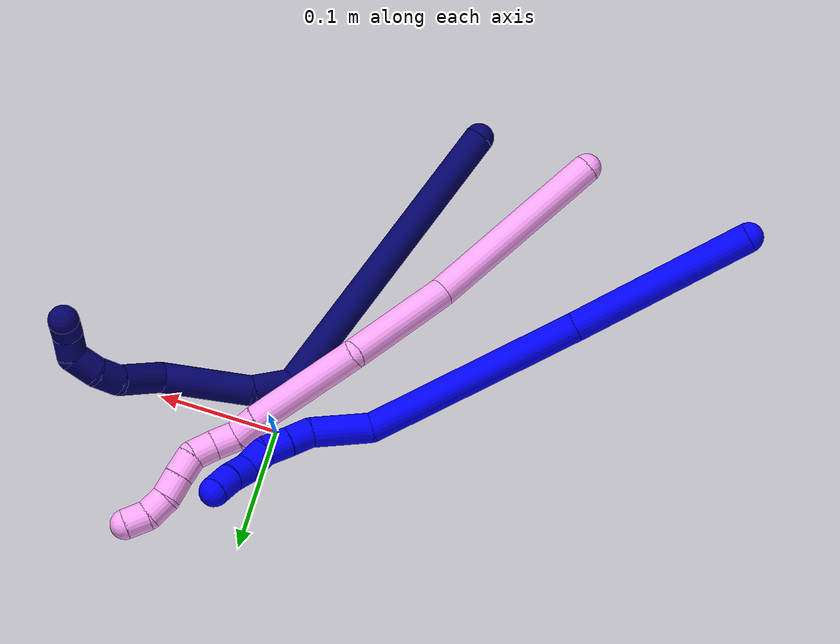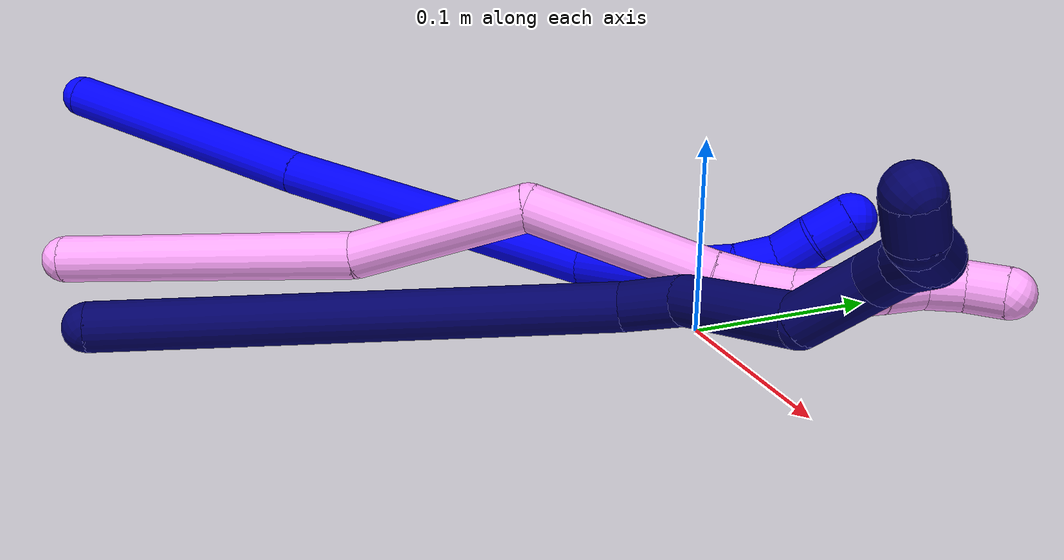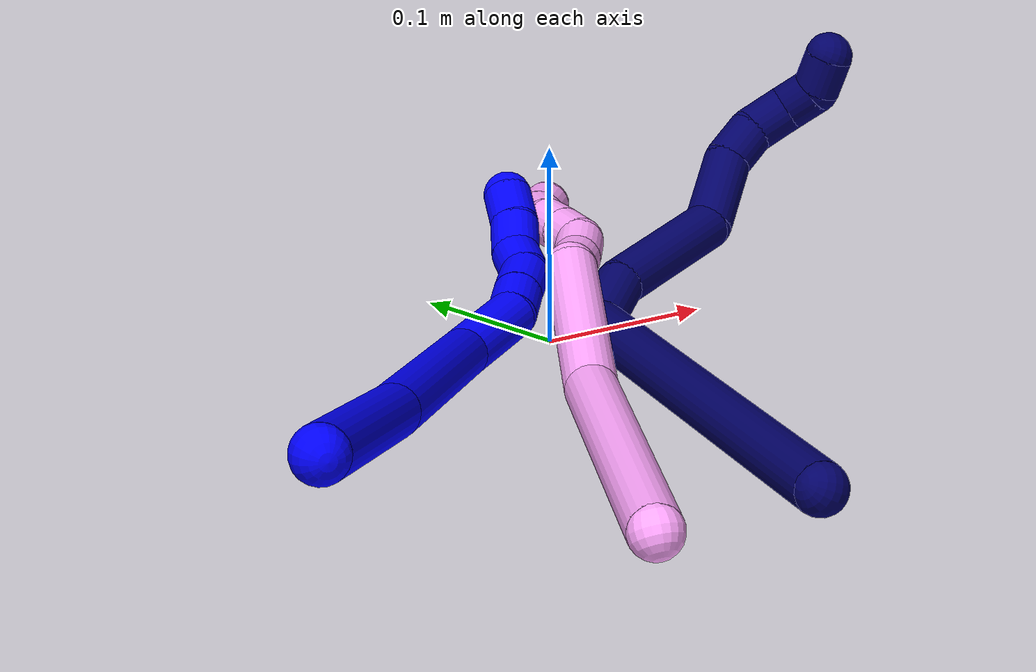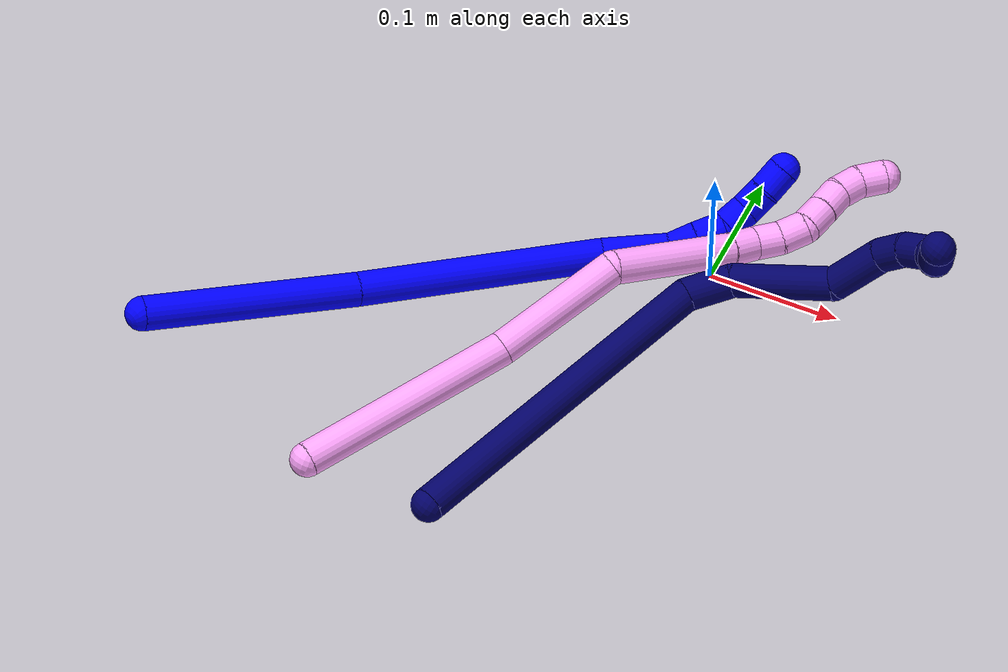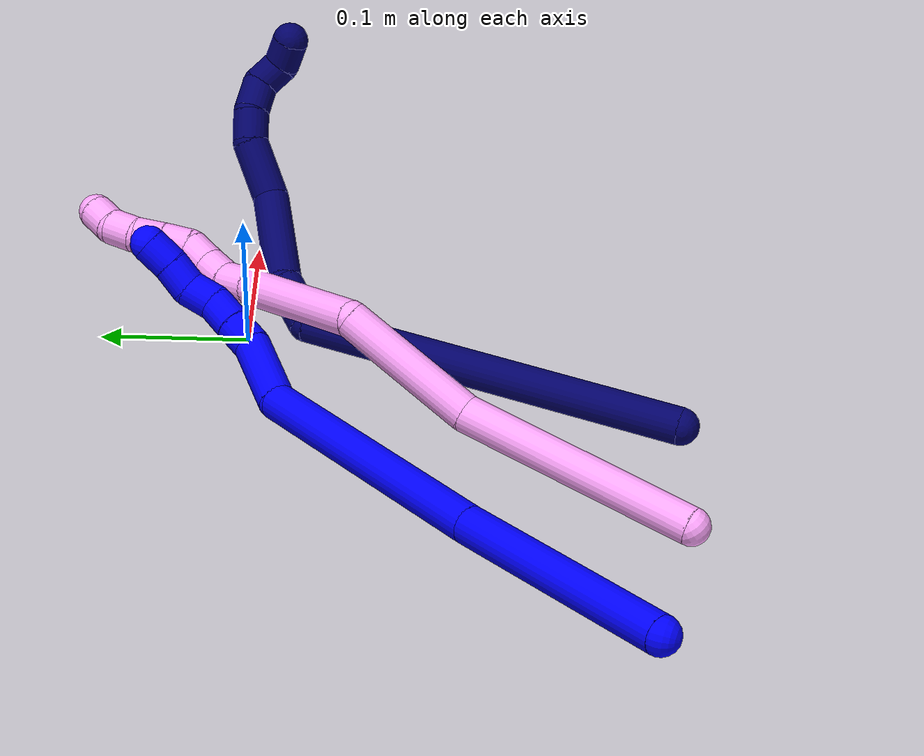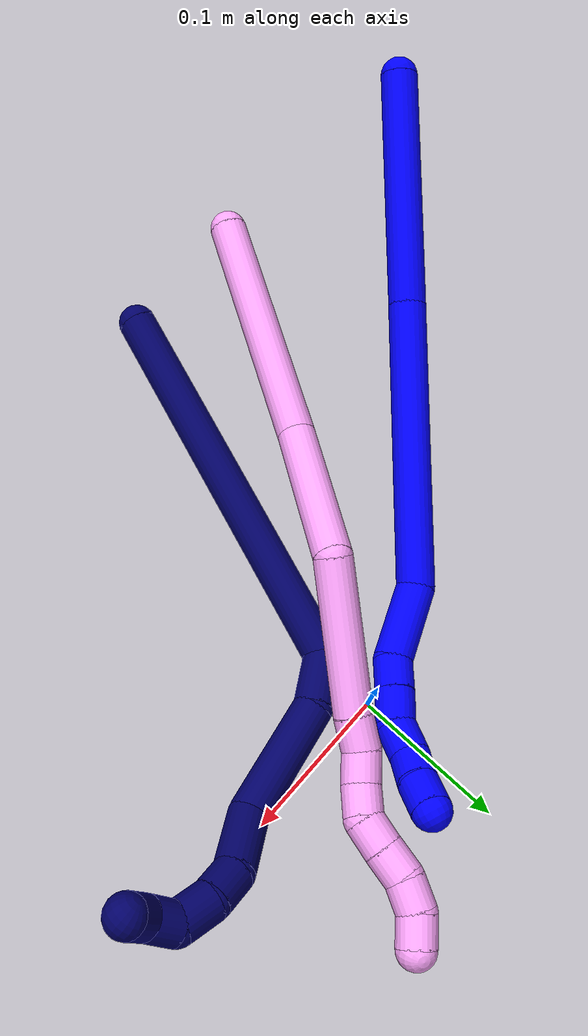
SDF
<sdf version="1.7">
 <world name="default">
  <model name="1">
   <static>0</static>
   <link name="1">
    <collision name="collision-cylinder-e_1_1_4">
     <pose>0.036249 0.003891 -0.070241 -3.08626 0.475799 -2.91432</pose>
     <geometry><cylinder><radius>0.0125</radius><length>0.158278</length></cylinder></geometry>
     <surface>
      <friction><ode><mu>1.16</mu><mu2>1.16</mu2><slip1>0</slip1><slip2>0</slip2></ode></friction>
      <contact><ode><kp>1e+06</kp><kd>1</kd><max_vel>0</max_vel><min_depth>0.001</min_depth></ode></contact>
     </surface>
    </collision>
    <visual name="visual-cylinder-e_1_1_4">
     <pose>0.036249 0.003891 -0.070241 -3.08626 0.475799 -2.91432</pose>
     <geometry><cylinder><radius>0.0125</radius><length>0.158278</length></cylinder></geometry>
     <material><ambient>0 0 1 1</ambient></material>
    </visual>
    <collision name="collision-cylinder-e_2_4_5">
     <pose>0.114291 0.01708 -0.22377 -3.03042 0.462596 -2.67755</pose>
     <geometry><cylinder><radius>0.0125</radius><length>0.187296</length></cylinder></geometry>
     <surface>
      <friction><ode><mu>1.16</mu><mu2>1.16</mu2><slip1>0</slip1><slip2>0</slip2></ode></friction>
      <contact><ode><kp>1e+06</kp><kd>1</kd><max_vel>0</max_vel><min_depth>0.001</min_depth></ode></contact>
     </surface>
    </collision>
    <visual name="visual-cylinder-e_2_4_5">
     <pose>0.114291 0.01708 -0.22377 -3.03042 0.462596 -2.67755</pose>
     <geometry><cylinder><radius>0.0125</radius><length>0.187296</length></cylinder></geometry>
     <material><ambient>0 0 1 1</ambient></material>
    </visual>
    <collision name="collision-cylinder-e_3_5_6">
     <pose>0.170284 0.038531 -0.324368 -2.52947 0.59127 -1.53395</pose>
     <geometry><cylinder><radius>0.0125</radius><length>0.050951</length></cylinder></geometry>
     <surface>
      <friction><ode><mu>1.16</mu><mu2>1.16</mu2><slip1>0</slip1><slip2>0</slip2></ode></friction>
      <contact><ode><kp>1e+06</kp><kd>1</kd><max_vel>0</max_vel><min_depth>0.001</min_depth></ode></contact>
     </surface>
    </collision>
    <visual name="visual-cylinder-e_3_5_6">
     <pose>0.170284 0.038531 -0.324368 -2.52947 0.59127 -1.53395</pose>
     <geometry><cylinder><radius>0.0125</radius><length>0.050951</length></cylinder></geometry>
     <material><ambient>0 0 1 1</ambient></material>
    </visual>
    <collision name="collision-cylinder-e_4_6_7">
     <pose>0.187023 0.055369 -0.35055 -2.65581 0.247815 -0.931519</pose>
     <geometry><cylinder><radius>0.0125</radius><length>0.020699</length></cylinder></geometry>
     <surface>
      <friction><ode><mu>1.16</mu><mu2>1.16</mu2><slip1>0</slip1><slip2>0</slip2></ode></friction>
      <contact><ode><kp>1e+06</kp><kd>1</kd><max_vel>0</max_vel><min_depth>0.001</min_depth></ode></contact>
     </surface>
    </collision>
    <visual name="visual-cylinder-e_4_6_7">
     <pose>0.187023 0.055369 -0.35055 -2.65581 0.247815 -0.931519</pose>
     <geometry><cylinder><radius>0.0125</radius><length>0.020699</length></cylinder></geometry>
     <material><ambient>0 0 1 1</ambient></material>
    </visual>
    <collision name="collision-cylinder-e_5_7_8">
     <pose>0.192682 0.064837 -0.368539 -2.65839 0.294254 -1.08292</pose>
     <geometry><cylinder><radius>0.0125</radius><length>0.021513</length></cylinder></geometry>
     <surface>
      <friction><ode><mu>1.16</mu><mu2>1.16</mu2><slip1>0</slip1><slip2>0</slip2></ode></friction>
      <contact><ode><kp>1e+06</kp><kd>1</kd><max_vel>0</max_vel><min_depth>0.001</min_depth></ode></contact>
     </surface>
    </collision>
    <visual name="visual-cylinder-e_5_7_8">
     <pose>0.192682 0.064837 -0.368539 -2.65839 0.294254 -1.08292</pose>
     <geometry><cylinder><radius>0.0125</radius><length>0.021513</length></cylinder></geometry>
     <material><ambient>0 0 1 1</ambient></material>
    </visual>
    <collision name="collision-cylinder-e_6_8_9">
     <pose>0.195168 0.07261 -0.387611 -2.84978 -0.060848 0.408419</pose>
     <geometry><cylinder><radius>0.0125</radius><length>0.020832</length></cylinder></geometry>
     <surface>
      <friction><ode><mu>1.16</mu><mu2>1.16</mu2><slip1>0</slip1><slip2>0</slip2></ode></friction>
      <contact><ode><kp>1e+06</kp><kd>1</kd><max_vel>0</max_vel><min_depth>0.001</min_depth></ode></contact>
     </surface>
    </collision>
    <visual name="visual-cylinder-e_6_8_9">
     <pose>0.195168 0.07261 -0.387611 -2.84978 -0.060848 0.408419</pose>
     <geometry><cylinder><radius>0.0125</radius><length>0.020832</length></cylinder></geometry>
     <material><ambient>0 0 1 1</ambient></material>
    </visual>
    <collision name="collision-cylinder-e_7_9_10">
     <pose>0.193499 0.082246 -0.405056 -2.41577 -0.103083 0.27005</pose>
     <geometry><cylinder><radius>0.0125</radius><length>0.02013</length></cylinder></geometry>
     <surface>
      <friction><ode><mu>1.16</mu><mu2>1.16</mu2><slip1>0</slip1><slip2>0</slip2></ode></friction>
      <contact><ode><kp>1e+06</kp><kd>1</kd><max_vel>0</max_vel><min_depth>0.001</min_depth></ode></contact>
     </surface>
    </collision>
    <visual name="visual-cylinder-e_7_9_10">
     <pose>0.193499 0.082246 -0.405056 -2.41577 -0.103083 0.27005</pose>
     <geometry><cylinder><radius>0.0125</radius><length>0.02013</length></cylinder></geometry>
     <material><ambient>0 0 1 1</ambient></material>
    </visual>
    <collision name="collision-cylinder-e_8_10_2">
     <pose>0.190567 0.094422 -0.420843 -2.55377 -0.18792 0.603664</pose>
     <geometry><cylinder><radius>0.0125</radius><length>0.020302</length></cylinder></geometry>
     <surface>
      <friction><ode><mu>1.16</mu><mu2>1.16</mu2><slip1>0</slip1><slip2>0</slip2></ode></friction>
      <contact><ode><kp>1e+06</kp><kd>1</kd><max_vel>0</max_vel><min_depth>0.001</min_depth></ode></contact>
     </surface>
    </collision>
    <visual name="visual-cylinder-e_8_10_2">
     <pose>0.190567 0.094422 -0.420843 -2.55377 -0.18792 0.603664</pose>
     <geometry><cylinder><radius>0.0125</radius><length>0.020302</length></cylinder></geometry>
     <material><ambient>0 0 1 1</ambient></material>
    </visual>
    <collision name="collision-sphere-2">
     <pose>0.18867 0.099952 -0.429142 0 -0 0</pose>
     <geometry><sphere><radius>0.0125</radius></sphere></geometry>
     <surface>
      <friction><ode><mu>1.16</mu><mu2>1.16</mu2><slip1>0</slip1><slip2>0</slip2></ode></friction>
      <contact><ode><kp>1e+06</kp><kd>1</kd><max_vel>0</max_vel><min_depth>0.001</min_depth></ode></contact>
     </surface>
    </collision>
    <visual name="visual-sphere-2">
     <pose>0.18867 0.099952 -0.429142 0 -0 0</pose>
     <geometry><sphere><radius>0.0125</radius></sphere></geometry>
     <material><ambient>0 0 1 1</ambient></material>
    </visual>
    <collision name="collision-sphere-10">
     <pose>0.192463 0.088892 -0.412544 0 -0 0</pose>
     <geometry><sphere><radius>0.0125</radius></sphere></geometry>
     <surface>
      <friction><ode><mu>1.16</mu><mu2>1.16</mu2><slip1>0</slip1><slip2>0</slip2></ode></friction>
      <contact><ode><kp>1e+06</kp><kd>1</kd><max_vel>0</max_vel><min_depth>0.001</min_depth></ode></contact>
     </surface>
    </collision>
    <visual name="visual-sphere-10">
     <pose>0.192463 0.088892 -0.412544 0 -0 0</pose>
     <geometry><sphere><radius>0.0125</radius></sphere></geometry>
     <material><ambient>0 0 1 1</ambient></material>
    </visual>
    <collision name="collision-sphere-9">
     <pose>0.194534 0.075601 -0.397568 0 -0 0</pose>
     <geometry><sphere><radius>0.0125</radius></sphere></geometry>
     <surface>
      <friction><ode><mu>1.16</mu><mu2>1.16</mu2><slip1>0</slip1><slip2>0</slip2></ode></friction>
      <contact><ode><kp>1e+06</kp><kd>1</kd><max_vel>0</max_vel><min_depth>0.001</min_depth></ode></contact>
     </surface>
    </collision>
    <visual name="visual-sphere-9">
     <pose>0.194534 0.075601 -0.397568 0 -0 0</pose>
     <geometry><sphere><radius>0.0125</radius></sphere></geometry>
     <material><ambient>0 0 1 1</ambient></material>
    </visual>
    <collision name="collision-sphere-4">
     <pose>0.072499 0.007782 -0.140482 0 -0 0</pose>
     <geometry><sphere><radius>0.0125</radius></sphere></geometry>
     <surface>
      <friction><ode><mu>1.16</mu><mu2>1.16</mu2><slip1>0</slip1><slip2>0</slip2></ode></friction>
      <contact><ode><kp>1e+06</kp><kd>1</kd><max_vel>0</max_vel><min_depth>0.001</min_depth></ode></contact>
     </surface>
    </collision>
    <visual name="visual-sphere-4">
     <pose>0.072499 0.007782 -0.140482 0 -0 0</pose>
     <geometry><sphere><radius>0.0125</radius></sphere></geometry>
     <material><ambient>0 0 1 1</ambient></material>
    </visual>
    <collision name="collision-sphere-1">
     <geometry><sphere><radius>0.0125</radius></sphere></geometry>
     <surface>
      <friction><ode><mu>1.16</mu><mu2>1.16</mu2><slip1>0</slip1><slip2>0</slip2></ode></friction>
      <contact><ode><kp>1e+06</kp><kd>1</kd><max_vel>0</max_vel><min_depth>0.001</min_depth></ode></contact>
     </surface>
    </collision>
    <visual name="visual-sphere-1">
     <geometry><sphere><radius>0.0125</radius></sphere></geometry>
     <material><ambient>0 0 1 1</ambient></material>
    </visual>
    <collision name="collision-sphere-8">
     <pose>0.195801 0.069619 -0.377654 0 -0 0</pose>
     <geometry><sphere><radius>0.0125</radius></sphere></geometry>
     <surface>
      <friction><ode><mu>1.16</mu><mu2>1.16</mu2><slip1>0</slip1><slip2>0</slip2></ode></friction>
      <contact><ode><kp>1e+06</kp><kd>1</kd><max_vel>0</max_vel><min_depth>0.001</min_depth></ode></contact>
     </surface>
    </collision>
    <visual name="visual-sphere-8">
     <pose>0.195801 0.069619 -0.377654 0 -0 0</pose>
     <geometry><sphere><radius>0.0125</radius></sphere></geometry>
     <material><ambient>0 0 1 1</ambient></material>
    </visual>
    <collision name="collision-sphere-5">
     <pose>0.156084 0.026378 -0.307057 0 -0 0</pose>
     <geometry><sphere><radius>0.0125</radius></sphere></geometry>
     <surface>
      <friction><ode><mu>1.16</mu><mu2>1.16</mu2><slip1>0</slip1><slip2>0</slip2></ode></friction>
      <contact><ode><kp>1e+06</kp><kd>1</kd><max_vel>0</max_vel><min_depth>0.001</min_depth></ode></contact>
     </surface>
    </collision>
    <visual name="visual-sphere-5">
     <pose>0.156084 0.026378 -0.307057 0 -0 0</pose>
     <geometry><sphere><radius>0.0125</radius></sphere></geometry>
     <material><ambient>0 0 1 1</ambient></material>
    </visual>
    <collision name="collision-sphere-6">
     <pose>0.184485 0.050684 -0.341678 0 -0 0</pose>
     <geometry><sphere><radius>0.0125</radius></sphere></geometry>
     <surface>
      <friction><ode><mu>1.16</mu><mu2>1.16</mu2><slip1>0</slip1><slip2>0</slip2></ode></friction>
      <contact><ode><kp>1e+06</kp><kd>1</kd><max_vel>0</max_vel><min_depth>0.001</min_depth></ode></contact>
     </surface>
    </collision>
    <visual name="visual-sphere-6">
     <pose>0.184485 0.050684 -0.341678 0 -0 0</pose>
     <geometry><sphere><radius>0.0125</radius></sphere></geometry>
     <material><ambient>0 0 1 1</ambient></material>
    </visual>
    <collision name="collision-sphere-7">
     <pose>0.189562 0.060054 -0.359423 0 -0 0</pose>
     <geometry><sphere><radius>0.0125</radius></sphere></geometry>
     <surface>
      <friction><ode><mu>1.16</mu><mu2>1.16</mu2><slip1>0</slip1><slip2>0</slip2></ode></friction>
      <contact><ode><kp>1e+06</kp><kd>1</kd><max_vel>0</max_vel><min_depth>0.001</min_depth></ode></contact>
     </surface>
    </collision>
    <visual name="visual-sphere-7">
     <pose>0.189562 0.060054 -0.359423 0 -0 0</pose>
     <geometry><sphere><radius>0.0125</radius></sphere></geometry>
     <material><ambient>0 0 1 1</ambient></material>
    </visual>
    <inertial>
     <pose>0.111332 0.026808 -0.219025 0 -0 0</pose>
     <mass>0.5</mass>
     <inertia>
      <ixx>-0.001016</ixx>
      <ixy>0</ixy>
      <ixz>0</ixz>
      <iyy>0.000541</iyy>
      <iyz>0</iyz>
      <izz>-0.000524</izz>
     </inertia>
    </inertial>
   </link>
   <pose>-0.324163 -0.258882 0.067735 1.54815 0.480713 -0.370484</pose>
  </model>
  <model name="4">
   <static>0</static>
   <link name="4">
    <collision name="collision-cylinder-e_1_1_4">
     <pose>0.048463 0.044059 -0.04902 -2.40944 0.634015 -1.41569</pose>
     <geometry><cylinder><radius>0.0125</radius><length>0.16362</length></cylinder></geometry>
     <surface>
      <friction><ode><mu>1.16</mu><mu2>1.16</mu2><slip1>0</slip1><slip2>0</slip2></ode></friction>
      <contact><ode><kp>1e+06</kp><kd>1</kd><max_vel>0</max_vel><min_depth>0.001</min_depth></ode></contact>
     </surface>
    </collision>
    <visual name="visual-cylinder-e_1_1_4">
     <pose>0.048463 0.044059 -0.04902 -2.40944 0.634015 -1.41569</pose>
     <geometry><cylinder><radius>0.0125</radius><length>0.16362</length></cylinder></geometry>
     <material><ambient>1 0.65098 0.996078 1</ambient></material>
    </visual>
    <collision name="collision-cylinder-e_2_4_5">
     <pose>0.116157 0.111597 -0.136194 -2.58994 0.405481 -1.25629</pose>
     <geometry><cylinder><radius>0.0125</radius><length>0.097503</length></cylinder></geometry>
     <surface>
      <friction><ode><mu>1.16</mu><mu2>1.16</mu2><slip1>0</slip1><slip2>0</slip2></ode></friction>
      <contact><ode><kp>1e+06</kp><kd>1</kd><max_vel>0</max_vel><min_depth>0.001</min_depth></ode></contact>
     </surface>
    </collision>
    <visual name="visual-cylinder-e_2_4_5">
     <pose>0.116157 0.111597 -0.136194 -2.58994 0.405481 -1.25629</pose>
     <geometry><cylinder><radius>0.0125</radius><length>0.097503</length></cylinder></geometry>
     <material><ambient>1 0.65098 0.996078 1</ambient></material>
    </visual>
    <collision name="collision-cylinder-e_3_5_6">
     <pose>0.166008 0.169897 -0.188056 -1.94586 0.685766 -0.965636</pose>
     <geometry><cylinder><radius>0.0125</radius><length>0.096706</length></cylinder></geometry>
     <surface>
      <friction><ode><mu>1.16</mu><mu2>1.16</mu2><slip1>0</slip1><slip2>0</slip2></ode></friction>
      <contact><ode><kp>1e+06</kp><kd>1</kd><max_vel>0</max_vel><min_depth>0.001</min_depth></ode></contact>
     </surface>
    </collision>
    <visual name="visual-cylinder-e_3_5_6">
     <pose>0.166008 0.169897 -0.188056 -1.94586 0.685766 -0.965636</pose>
     <geometry><cylinder><radius>0.0125</radius><length>0.096706</length></cylinder></geometry>
     <material><ambient>1 0.65098 0.996078 1</ambient></material>
    </visual>
    <collision name="collision-cylinder-e_4_6_7">
     <pose>0.204045 0.211754 -0.205425 -2.05041 0.75188 -1.15305</pose>
     <geometry><cylinder><radius>0.0125</radius><length>0.021718</length></cylinder></geometry>
     <surface>
      <friction><ode><mu>1.16</mu><mu2>1.16</mu2><slip1>0</slip1><slip2>0</slip2></ode></friction>
      <contact><ode><kp>1e+06</kp><kd>1</kd><max_vel>0</max_vel><min_depth>0.001</min_depth></ode></contact>
     </surface>
    </collision>
    <visual name="visual-cylinder-e_4_6_7">
     <pose>0.204045 0.211754 -0.205425 -2.05041 0.75188 -1.15305</pose>
     <geometry><cylinder><radius>0.0125</radius><length>0.021718</length></cylinder></geometry>
     <material><ambient>1 0.65098 0.996078 1</ambient></material>
    </visual>
    <collision name="collision-cylinder-e_5_7_8">
     <pose>0.215531 0.226782 -0.2139 -2.11308 0.411254 -0.707331</pose>
     <geometry><cylinder><radius>0.0125</radius><length>0.020358</length></cylinder></geometry>
     <surface>
      <friction><ode><mu>1.16</mu><mu2>1.16</mu2><slip1>0</slip1><slip2>0</slip2></ode></friction>
      <contact><ode><kp>1e+06</kp><kd>1</kd><max_vel>0</max_vel><min_depth>0.001</min_depth></ode></contact>
     </surface>
    </collision>
    <visual name="visual-cylinder-e_5_7_8">
     <pose>0.215531 0.226782 -0.2139 -2.11308 0.411254 -0.707331</pose>
     <geometry><cylinder><radius>0.0125</radius><length>0.020358</length></cylinder></geometry>
     <material><ambient>1 0.65098 0.996078 1</ambient></material>
    </visual>
    <collision name="collision-cylinder-e_6_8_9">
     <pose>0.223166 0.241389 -0.225328 -2.35596 0.364252 -0.836489</pose>
     <geometry><cylinder><radius>0.0125</radius><length>0.02002</length></cylinder></geometry>
     <surface>
      <friction><ode><mu>1.16</mu><mu2>1.16</mu2><slip1>0</slip1><slip2>0</slip2></ode></friction>
      <contact><ode><kp>1e+06</kp><kd>1</kd><max_vel>0</max_vel><min_depth>0.001</min_depth></ode></contact>
     </surface>
    </collision>
    <visual name="visual-cylinder-e_6_8_9">
     <pose>0.223166 0.241389 -0.225328 -2.35596 0.364252 -0.836489</pose>
     <geometry><cylinder><radius>0.0125</radius><length>0.02002</length></cylinder></geometry>
     <material><ambient>1 0.65098 0.996078 1</ambient></material>
    </visual>
    <collision name="collision-cylinder-e_7_9_10">
     <pose>0.234186 0.250934 -0.23798 -2.68994 0.837647 -2.18872</pose>
     <geometry><cylinder><radius>0.0125</radius><length>0.020062</length></cylinder></geometry>
     <surface>
      <friction><ode><mu>1.16</mu><mu2>1.16</mu2><slip1>0</slip1><slip2>0</slip2></ode></friction>
      <contact><ode><kp>1e+06</kp><kd>1</kd><max_vel>0</max_vel><min_depth>0.001</min_depth></ode></contact>
     </surface>
    </collision>
    <visual name="visual-cylinder-e_7_9_10">
     <pose>0.234186 0.250934 -0.23798 -2.68994 0.837647 -2.18872</pose>
     <geometry><cylinder><radius>0.0125</radius><length>0.020062</length></cylinder></geometry>
     <material><ambient>1 0.65098 0.996078 1</ambient></material>
    </visual>
    <collision name="collision-cylinder-e_8_10_11">
     <pose>0.249276 0.256404 -0.24996 -2.73751 0.868585 -2.30987</pose>
     <geometry><cylinder><radius>0.0125</radius><length>0.020005</length></cylinder></geometry>
     <surface>
      <friction><ode><mu>1.16</mu><mu2>1.16</mu2><slip1>0</slip1><slip2>0</slip2></ode></friction>
      <contact><ode><kp>1e+06</kp><kd>1</kd><max_vel>0</max_vel><min_depth>0.001</min_depth></ode></contact>
     </surface>
    </collision>
    <visual name="visual-cylinder-e_8_10_11">
     <pose>0.249276 0.256404 -0.24996 -2.73751 0.868585 -2.30987</pose>
     <geometry><cylinder><radius>0.0125</radius><length>0.020005</length></cylinder></geometry>
     <material><ambient>1 0.65098 0.996078 1</ambient></material>
    </visual>
    <collision name="collision-cylinder-e_9_11_12">
     <pose>0.263648 0.264142 -0.261156 -2.36176 0.738977 -1.51148</pose>
     <geometry><cylinder><radius>0.0125</radius><length>0.020001</length></cylinder></geometry>
     <surface>
      <friction><ode><mu>1.16</mu><mu2>1.16</mu2><slip1>0</slip1><slip2>0</slip2></ode></friction>
      <contact><ode><kp>1e+06</kp><kd>1</kd><max_vel>0</max_vel><min_depth>0.001</min_depth></ode></contact>
     </surface>
    </collision>
    <visual name="visual-cylinder-e_9_11_12">
     <pose>0.263648 0.264142 -0.261156 -2.36176 0.738977 -1.51148</pose>
     <geometry><cylinder><radius>0.0125</radius><length>0.020001</length></cylinder></geometry>
     <material><ambient>1 0.65098 0.996078 1</ambient></material>
    </visual>
    <collision name="collision-cylinder-e_10_12_2">
     <pose>0.274236 0.27723 -0.271205 -2.11667 0.395353 -0.68405</pose>
     <geometry><cylinder><radius>0.0125</radius><length>0.020006</length></cylinder></geometry>
     <surface>
      <friction><ode><mu>1.16</mu><mu2>1.16</mu2><slip1>0</slip1><slip2>0</slip2></ode></friction>
      <contact><ode><kp>1e+06</kp><kd>1</kd><max_vel>0</max_vel><min_depth>0.001</min_depth></ode></contact>
     </surface>
    </collision>
    <visual name="visual-cylinder-e_10_12_2">
     <pose>0.274236 0.27723 -0.271205 -2.11667 0.395353 -0.68405</pose>
     <geometry><cylinder><radius>0.0125</radius><length>0.020006</length></cylinder></geometry>
     <material><ambient>1 0.65098 0.996078 1</ambient></material>
    </visual>
    <collision name="collision-sphere-2">
     <pose>0.278088 0.28512 -0.275997 0 -0 0</pose>
     <geometry><sphere><radius>0.0125</radius></sphere></geometry>
     <surface>
      <friction><ode><mu>1.16</mu><mu2>1.16</mu2><slip1>0</slip1><slip2>0</slip2></ode></friction>
      <contact><ode><kp>1e+06</kp><kd>1</kd><max_vel>0</max_vel><min_depth>0.001</min_depth></ode></contact>
     </surface>
    </collision>
    <visual name="visual-sphere-2">
     <pose>0.278088 0.28512 -0.275997 0 -0 0</pose>
     <geometry><sphere><radius>0.0125</radius></sphere></geometry>
     <material><ambient>1 0.65098 0.996078 1</ambient></material>
    </visual>
    <collision name="collision-sphere-12">
     <pose>0.270384 0.26934 -0.266412 0 -0 0</pose>
     <geometry><sphere><radius>0.0125</radius></sphere></geometry>
     <surface>
      <friction><ode><mu>1.16</mu><mu2>1.16</mu2><slip1>0</slip1><slip2>0</slip2></ode></friction>
      <contact><ode><kp>1e+06</kp><kd>1</kd><max_vel>0</max_vel><min_depth>0.001</min_depth></ode></contact>
     </surface>
    </collision>
    <visual name="visual-sphere-12">
     <pose>0.270384 0.26934 -0.266412 0 -0 0</pose>
     <geometry><sphere><radius>0.0125</radius></sphere></geometry>
     <material><ambient>1 0.65098 0.996078 1</ambient></material>
    </visual>
    <collision name="collision-sphere-11">
     <pose>0.256912 0.258945 -0.2559 0 -0 0</pose>
     <geometry><sphere><radius>0.0125</radius></sphere></geometry>
     <surface>
      <friction><ode><mu>1.16</mu><mu2>1.16</mu2><slip1>0</slip1><slip2>0</slip2></ode></friction>
      <contact><ode><kp>1e+06</kp><kd>1</kd><max_vel>0</max_vel><min_depth>0.001</min_depth></ode></contact>
     </surface>
    </collision>
    <visual name="visual-sphere-11">
     <pose>0.256912 0.258945 -0.2559 0 -0 0</pose>
     <geometry><sphere><radius>0.0125</radius></sphere></geometry>
     <material><ambient>1 0.65098 0.996078 1</ambient></material>
    </visual>
    <collision name="collision-sphere-10">
     <pose>0.24164 0.253864 -0.244019 0 -0 0</pose>
     <geometry><sphere><radius>0.0125</radius></sphere></geometry>
     <surface>
      <friction><ode><mu>1.16</mu><mu2>1.16</mu2><slip1>0</slip1><slip2>0</slip2></ode></friction>
      <contact><ode><kp>1e+06</kp><kd>1</kd><max_vel>0</max_vel><min_depth>0.001</min_depth></ode></contact>
     </surface>
    </collision>
    <visual name="visual-sphere-10">
     <pose>0.24164 0.253864 -0.244019 0 -0 0</pose>
     <geometry><sphere><radius>0.0125</radius></sphere></geometry>
     <material><ambient>1 0.65098 0.996078 1</ambient></material>
    </visual>
    <collision name="collision-sphere-9">
     <pose>0.226732 0.248005 -0.23194 0 -0 0</pose>
     <geometry><sphere><radius>0.0125</radius></sphere></geometry>
     <surface>
      <friction><ode><mu>1.16</mu><mu2>1.16</mu2><slip1>0</slip1><slip2>0</slip2></ode></friction>
      <contact><ode><kp>1e+06</kp><kd>1</kd><max_vel>0</max_vel><min_depth>0.001</min_depth></ode></contact>
     </surface>
    </collision>
    <visual name="visual-sphere-9">
     <pose>0.226732 0.248005 -0.23194 0 -0 0</pose>
     <geometry><sphere><radius>0.0125</radius></sphere></geometry>
     <material><ambient>1 0.65098 0.996078 1</ambient></material>
    </visual>
    <collision name="collision-sphere-4">
     <pose>0.096926 0.088118 -0.098041 0 -0 0</pose>
     <geometry><sphere><radius>0.0125</radius></sphere></geometry>
     <surface>
      <friction><ode><mu>1.16</mu><mu2>1.16</mu2><slip1>0</slip1><slip2>0</slip2></ode></friction>
      <contact><ode><kp>1e+06</kp><kd>1</kd><max_vel>0</max_vel><min_depth>0.001</min_depth></ode></contact>
     </surface>
    </collision>
    <visual name="visual-sphere-4">
     <pose>0.096926 0.088118 -0.098041 0 -0 0</pose>
     <geometry><sphere><radius>0.0125</radius></sphere></geometry>
     <material><ambient>1 0.65098 0.996078 1</ambient></material>
    </visual>
    <collision name="collision-sphere-1">
     <geometry><sphere><radius>0.0125</radius></sphere></geometry>
     <surface>
      <friction><ode><mu>1.16</mu><mu2>1.16</mu2><slip1>0</slip1><slip2>0</slip2></ode></friction>
      <contact><ode><kp>1e+06</kp><kd>1</kd><max_vel>0</max_vel><min_depth>0.001</min_depth></ode></contact>
     </surface>
    </collision>
    <visual name="visual-sphere-1">
     <geometry><sphere><radius>0.0125</radius></sphere></geometry>
     <material><ambient>1 0.65098 0.996078 1</ambient></material>
    </visual>
    <collision name="collision-sphere-8">
     <pose>0.2196 0.234774 -0.218715 0 -0 0</pose>
     <geometry><sphere><radius>0.0125</radius></sphere></geometry>
     <surface>
      <friction><ode><mu>1.16</mu><mu2>1.16</mu2><slip1>0</slip1><slip2>0</slip2></ode></friction>
      <contact><ode><kp>1e+06</kp><kd>1</kd><max_vel>0</max_vel><min_depth>0.001</min_depth></ode></contact>
     </surface>
    </collision>
    <visual name="visual-sphere-8">
     <pose>0.2196 0.234774 -0.218715 0 -0 0</pose>
     <geometry><sphere><radius>0.0125</radius></sphere></geometry>
     <material><ambient>1 0.65098 0.996078 1</ambient></material>
    </visual>
    <collision name="collision-sphere-5">
     <pose>0.135387 0.135076 -0.174347 0 -0 0</pose>
     <geometry><sphere><radius>0.0125</radius></sphere></geometry>
     <surface>
      <friction><ode><mu>1.16</mu><mu2>1.16</mu2><slip1>0</slip1><slip2>0</slip2></ode></friction>
      <contact><ode><kp>1e+06</kp><kd>1</kd><max_vel>0</max_vel><min_depth>0.001</min_depth></ode></contact>
     </surface>
    </collision>
    <visual name="visual-sphere-5">
     <pose>0.135387 0.135076 -0.174347 0 -0 0</pose>
     <geometry><sphere><radius>0.0125</radius></sphere></geometry>
     <material><ambient>1 0.65098 0.996078 1</ambient></material>
    </visual>
    <collision name="collision-sphere-6">
     <pose>0.196628 0.204717 -0.201765 0 -0 0</pose>
     <geometry><sphere><radius>0.0125</radius></sphere></geometry>
     <surface>
      <friction><ode><mu>1.16</mu><mu2>1.16</mu2><slip1>0</slip1><slip2>0</slip2></ode></friction>
      <contact><ode><kp>1e+06</kp><kd>1</kd><max_vel>0</max_vel><min_depth>0.001</min_depth></ode></contact>
     </surface>
    </collision>
    <visual name="visual-sphere-6">
     <pose>0.196628 0.204717 -0.201765 0 -0 0</pose>
     <geometry><sphere><radius>0.0125</radius></sphere></geometry>
     <material><ambient>1 0.65098 0.996078 1</ambient></material>
    </visual>
    <collision name="collision-sphere-7">
     <pose>0.211462 0.218791 -0.209085 0 -0 0</pose>
     <geometry><sphere><radius>0.0125</radius></sphere></geometry>
     <surface>
      <friction><ode><mu>1.16</mu><mu2>1.16</mu2><slip1>0</slip1><slip2>0</slip2></ode></friction>
      <contact><ode><kp>1e+06</kp><kd>1</kd><max_vel>0</max_vel><min_depth>0.001</min_depth></ode></contact>
     </surface>
    </collision>
    <visual name="visual-sphere-7">
     <pose>0.211462 0.218791 -0.209085 0 -0 0</pose>
     <geometry><sphere><radius>0.0125</radius></sphere></geometry>
     <material><ambient>1 0.65098 0.996078 1</ambient></material>
    </visual>
    <inertial>
     <pose>0.138082 0.139123 -0.146475 0 -0 0</pose>
     <mass>0.5</mass>
     <inertia>
      <ixx>-0.000295</ixx>
      <ixy>0</ixy>
      <ixz>0</ixz>
      <iyy>-0.000279</iyy>
      <iyz>0</iyz>
      <izz>-0.000632</izz>
     </inertia>
    </inertial>
   </link>
   <pose>-0.181324 -0.288505 0.013602 -2.86508 0.519376 1.78378</pose>
  </model>
  <model name="7">
   <static>0</static>
   <link name="7">
    <collision name="collision-cylinder-e_1_1_4">
     <pose>0.083226 0.093338 0.037885 -1.18522 0.690509 -0.475199</pose>
     <geometry><cylinder><radius>0.0125</radius><length>0.261334</length></cylinder></geometry>
     <surface>
      <friction><ode><mu>1.16</mu><mu2>1.16</mu2><slip1>0</slip1><slip2>0</slip2></ode></friction>
      <contact><ode><kp>1e+06</kp><kd>1</kd><max_vel>0</max_vel><min_depth>0.001</min_depth></ode></contact>
     </surface>
    </collision>
    <visual name="visual-cylinder-e_1_1_4">
     <pose>0.083226 0.093338 0.037885 -1.18522 0.690509 -0.475199</pose>
     <geometry><cylinder><radius>0.0125</radius><length>0.261334</length></cylinder></geometry>
     <material><ambient>0.003922 0 0.403922 1</ambient></material>
    </visual>
    <collision name="collision-cylinder-e_2_4_5">
     <pose>0.165866 0.201169 0.086535 -0.93193 -0.03245 0.01632</pose>
     <geometry><cylinder><radius>0.0125</radius><length>0.036124</length></cylinder></geometry>
     <surface>
      <friction><ode><mu>1.16</mu><mu2>1.16</mu2><slip1>0</slip1><slip2>0</slip2></ode></friction>
      <contact><ode><kp>1e+06</kp><kd>1</kd><max_vel>0</max_vel><min_depth>0.001</min_depth></ode></contact>
     </surface>
    </collision>
    <visual name="visual-cylinder-e_2_4_5">
     <pose>0.165866 0.201169 0.086535 -0.93193 -0.03245 0.01632</pose>
     <geometry><cylinder><radius>0.0125</radius><length>0.036124</length></cylinder></geometry>
     <material><ambient>0.003922 0 0.403922 1</ambient></material>
    </visual>
    <collision name="collision-cylinder-e_3_5_6">
     <pose>0.1564 0.237454 0.126508 -0.641036 -0.238994 0.079675</pose>
     <geometry><cylinder><radius>0.0125</radius><length>0.075017</length></cylinder></geometry>
     <surface>
      <friction><ode><mu>1.16</mu><mu2>1.16</mu2><slip1>0</slip1><slip2>0</slip2></ode></friction>
      <contact><ode><kp>1e+06</kp><kd>1</kd><max_vel>0</max_vel><min_depth>0.001</min_depth></ode></contact>
     </surface>
    </collision>
    <visual name="visual-cylinder-e_3_5_6">
     <pose>0.1564 0.237454 0.126508 -0.641036 -0.238994 0.079675</pose>
     <geometry><cylinder><radius>0.0125</radius><length>0.075017</length></cylinder></geometry>
     <material><ambient>0.003922 0 0.403922 1</ambient></material>
    </visual>
    <collision name="collision-cylinder-e_4_6_7">
     <pose>0.142214 0.278455 0.162524 -1.23011 -0.254769 0.180474</pose>
     <geometry><cylinder><radius>0.0125</radius><length>0.042115</length></cylinder></geometry>
     <surface>
      <friction><ode><mu>1.16</mu><mu2>1.16</mu2><slip1>0</slip1><slip2>0</slip2></ode></friction>
      <contact><ode><kp>1e+06</kp><kd>1</kd><max_vel>0</max_vel><min_depth>0.001</min_depth></ode></contact>
     </surface>
    </collision>
    <visual name="visual-cylinder-e_4_6_7">
     <pose>0.142214 0.278455 0.162524 -1.23011 -0.254769 0.180474</pose>
     <geometry><cylinder><radius>0.0125</radius><length>0.042115</length></cylinder></geometry>
     <material><ambient>0.003922 0 0.403922 1</ambient></material>
    </visual>
    <collision name="collision-cylinder-e_5_7_8">
     <pose>0.130901 0.305474 0.174374 -0.997884 -0.573557 0.318683</pose>
     <geometry><cylinder><radius>0.0125</radius><length>0.022138</length></cylinder></geometry>
     <surface>
      <friction><ode><mu>1.16</mu><mu2>1.16</mu2><slip1>0</slip1><slip2>0</slip2></ode></friction>
      <contact><ode><kp>1e+06</kp><kd>1</kd><max_vel>0</max_vel><min_depth>0.001</min_depth></ode></contact>
     </surface>
    </collision>
    <visual name="visual-cylinder-e_5_7_8">
     <pose>0.130901 0.305474 0.174374 -0.997884 -0.573557 0.318683</pose>
     <geometry><cylinder><radius>0.0125</radius><length>0.022138</length></cylinder></geometry>
     <material><ambient>0.003922 0 0.403922 1</ambient></material>
    </visual>
    <collision name="collision-cylinder-e_6_8_9">
     <pose>0.117265 0.318645 0.18637 -0.656214 -0.715392 0.253114</pose>
     <geometry><cylinder><radius>0.0125</radius><length>0.023264</length></cylinder></geometry>
     <surface>
      <friction><ode><mu>1.16</mu><mu2>1.16</mu2><slip1>0</slip1><slip2>0</slip2></ode></friction>
      <contact><ode><kp>1e+06</kp><kd>1</kd><max_vel>0</max_vel><min_depth>0.001</min_depth></ode></contact>
     </surface>
    </collision>
    <visual name="visual-cylinder-e_6_8_9">
     <pose>0.117265 0.318645 0.18637 -0.656214 -0.715392 0.253114</pose>
     <geometry><cylinder><radius>0.0125</radius><length>0.023264</length></cylinder></geometry>
     <material><ambient>0.003922 0 0.403922 1</ambient></material>
    </visual>
    <collision name="collision-cylinder-e_7_9_10">
     <pose>0.099715 0.324715 0.194373 -0.598538 -1.44388 0.530529</pose>
     <geometry><cylinder><radius>0.0125</radius><length>0.020001</length></cylinder></geometry>
     <surface>
      <friction><ode><mu>1.16</mu><mu2>1.16</mu2><slip1>0</slip1><slip2>0</slip2></ode></friction>
      <contact><ode><kp>1e+06</kp><kd>1</kd><max_vel>0</max_vel><min_depth>0.001</min_depth></ode></contact>
     </surface>
    </collision>
    <visual name="visual-cylinder-e_7_9_10">
     <pose>0.099715 0.324715 0.194373 -0.598538 -1.44388 0.530529</pose>
     <geometry><cylinder><radius>0.0125</radius><length>0.020001</length></cylinder></geometry>
     <material><ambient>0.003922 0 0.403922 1</ambient></material>
    </visual>
    <collision name="collision-cylinder-e_8_10_2">
     <pose>0.081569 0.33048 0.192797 -2.04942 -0.965523 1.42333</pose>
     <geometry><cylinder><radius>0.0125</radius><length>0.020006</length></cylinder></geometry>
     <surface>
      <friction><ode><mu>1.16</mu><mu2>1.16</mu2><slip1>0</slip1><slip2>0</slip2></ode></friction>
      <contact><ode><kp>1e+06</kp><kd>1</kd><max_vel>0</max_vel><min_depth>0.001</min_depth></ode></contact>
     </surface>
    </collision>
    <visual name="visual-cylinder-e_8_10_2">
     <pose>0.081569 0.33048 0.192797 -2.04942 -0.965523 1.42333</pose>
     <geometry><cylinder><radius>0.0125</radius><length>0.020006</length></cylinder></geometry>
     <material><ambient>0.003922 0 0.403922 1</ambient></material>
    </visual>
    <collision name="collision-sphere-2">
     <pose>0.073343 0.335532 0.190176 0 -0 0</pose>
     <geometry><sphere><radius>0.0125</radius></sphere></geometry>
     <surface>
      <friction><ode><mu>1.16</mu><mu2>1.16</mu2><slip1>0</slip1><slip2>0</slip2></ode></friction>
      <contact><ode><kp>1e+06</kp><kd>1</kd><max_vel>0</max_vel><min_depth>0.001</min_depth></ode></contact>
     </surface>
    </collision>
    <visual name="visual-sphere-2">
     <pose>0.073343 0.335532 0.190176 0 -0 0</pose>
     <geometry><sphere><radius>0.0125</radius></sphere></geometry>
     <material><ambient>0.003922 0 0.403922 1</ambient></material>
    </visual>
    <collision name="collision-sphere-10">
     <pose>0.089795 0.325428 0.195419 0 -0 0</pose>
     <geometry><sphere><radius>0.0125</radius></sphere></geometry>
     <surface>
      <friction><ode><mu>1.16</mu><mu2>1.16</mu2><slip1>0</slip1><slip2>0</slip2></ode></friction>
      <contact><ode><kp>1e+06</kp><kd>1</kd><max_vel>0</max_vel><min_depth>0.001</min_depth></ode></contact>
     </surface>
    </collision>
    <visual name="visual-sphere-10">
     <pose>0.089795 0.325428 0.195419 0 -0 0</pose>
     <geometry><sphere><radius>0.0125</radius></sphere></geometry>
     <material><ambient>0.003922 0 0.403922 1</ambient></material>
    </visual>
    <collision name="collision-sphere-9">
     <pose>0.109635 0.324002 0.193327 0 -0 0</pose>
     <geometry><sphere><radius>0.0125</radius></sphere></geometry>
     <surface>
      <friction><ode><mu>1.16</mu><mu2>1.16</mu2><slip1>0</slip1><slip2>0</slip2></ode></friction>
      <contact><ode><kp>1e+06</kp><kd>1</kd><max_vel>0</max_vel><min_depth>0.001</min_depth></ode></contact>
     </surface>
    </collision>
    <visual name="visual-sphere-9">
     <pose>0.109635 0.324002 0.193327 0 -0 0</pose>
     <geometry><sphere><radius>0.0125</radius></sphere></geometry>
     <material><ambient>0.003922 0 0.403922 1</ambient></material>
    </visual>
    <collision name="collision-sphere-4">
     <pose>0.166452 0.186677 0.075771 0 -0 0</pose>
     <geometry><sphere><radius>0.0125</radius></sphere></geometry>
     <surface>
      <friction><ode><mu>1.16</mu><mu2>1.16</mu2><slip1>0</slip1><slip2>0</slip2></ode></friction>
      <contact><ode><kp>1e+06</kp><kd>1</kd><max_vel>0</max_vel><min_depth>0.001</min_depth></ode></contact>
     </surface>
    </collision>
    <visual name="visual-sphere-4">
     <pose>0.166452 0.186677 0.075771 0 -0 0</pose>
     <geometry><sphere><radius>0.0125</radius></sphere></geometry>
     <material><ambient>0.003922 0 0.403922 1</ambient></material>
    </visual>
    <collision name="collision-sphere-1">
     <geometry><sphere><radius>0.0125</radius></sphere></geometry>
     <surface>
      <friction><ode><mu>1.16</mu><mu2>1.16</mu2><slip1>0</slip1><slip2>0</slip2></ode></friction>
      <contact><ode><kp>1e+06</kp><kd>1</kd><max_vel>0</max_vel><min_depth>0.001</min_depth></ode></contact>
     </surface>
    </collision>
    <visual name="visual-sphere-1">
     <geometry><sphere><radius>0.0125</radius></sphere></geometry>
     <material><ambient>0.003922 0 0.403922 1</ambient></material>
    </visual>
    <collision name="collision-sphere-8">
     <pose>0.124895 0.313287 0.179414 0 -0 0</pose>
     <geometry><sphere><radius>0.0125</radius></sphere></geometry>
     <surface>
      <friction><ode><mu>1.16</mu><mu2>1.16</mu2><slip1>0</slip1><slip2>0</slip2></ode></friction>
      <contact><ode><kp>1e+06</kp><kd>1</kd><max_vel>0</max_vel><min_depth>0.001</min_depth></ode></contact>
     </surface>
    </collision>
    <visual name="visual-sphere-8">
     <pose>0.124895 0.313287 0.179414 0 -0 0</pose>
     <geometry><sphere><radius>0.0125</radius></sphere></geometry>
     <material><ambient>0.003922 0 0.403922 1</ambient></material>
    </visual>
    <collision name="collision-sphere-5">
     <pose>0.16528 0.215661 0.0973 0 -0 0</pose>
     <geometry><sphere><radius>0.0125</radius></sphere></geometry>
     <surface>
      <friction><ode><mu>1.16</mu><mu2>1.16</mu2><slip1>0</slip1><slip2>0</slip2></ode></friction>
      <contact><ode><kp>1e+06</kp><kd>1</kd><max_vel>0</max_vel><min_depth>0.001</min_depth></ode></contact>
     </surface>
    </collision>
    <visual name="visual-sphere-5">
     <pose>0.16528 0.215661 0.0973 0 -0 0</pose>
     <geometry><sphere><radius>0.0125</radius></sphere></geometry>
     <material><ambient>0.003922 0 0.403922 1</ambient></material>
    </visual>
    <collision name="collision-sphere-6">
     <pose>0.147521 0.259248 0.155715 0 -0 0</pose>
     <geometry><sphere><radius>0.0125</radius></sphere></geometry>
     <surface>
      <friction><ode><mu>1.16</mu><mu2>1.16</mu2><slip1>0</slip1><slip2>0</slip2></ode></friction>
      <contact><ode><kp>1e+06</kp><kd>1</kd><max_vel>0</max_vel><min_depth>0.001</min_depth></ode></contact>
     </surface>
    </collision>
    <visual name="visual-sphere-6">
     <pose>0.147521 0.259248 0.155715 0 -0 0</pose>
     <geometry><sphere><radius>0.0125</radius></sphere></geometry>
     <material><ambient>0.003922 0 0.403922 1</ambient></material>
    </visual>
    <collision name="collision-sphere-7">
     <pose>0.136907 0.297661 0.169334 0 -0 0</pose>
     <geometry><sphere><radius>0.0125</radius></sphere></geometry>
     <surface>
      <friction><ode><mu>1.16</mu><mu2>1.16</mu2><slip1>0</slip1><slip2>0</slip2></ode></friction>
      <contact><ode><kp>1e+06</kp><kd>1</kd><max_vel>0</max_vel><min_depth>0.001</min_depth></ode></contact>
     </surface>
    </collision>
    <visual name="visual-sphere-7">
     <pose>0.136907 0.297661 0.169334 0 -0 0</pose>
     <geometry><sphere><radius>0.0125</radius></sphere></geometry>
     <material><ambient>0.003922 0 0.403922 1</ambient></material>
    </visual>
    <inertial>
     <pose>0.109432 0.176964 0.090605 0 -0 0</pose>
     <mass>0.5</mass>
     <inertia>
      <ixx>0.000563</ixx>
      <ixy>0</ixy>
      <ixz>0</ixz>
      <iyy>0.000452</iyy>
      <iyz>0</iyz>
      <izz>-0.002029</izz>
     </inertia>
    </inertial>
   </link>
   <pose>-0.08769 -0.287066 0.011892 2.10127 0.602872 1.89592</pose>
  </model>
 </world>
</sdf>
